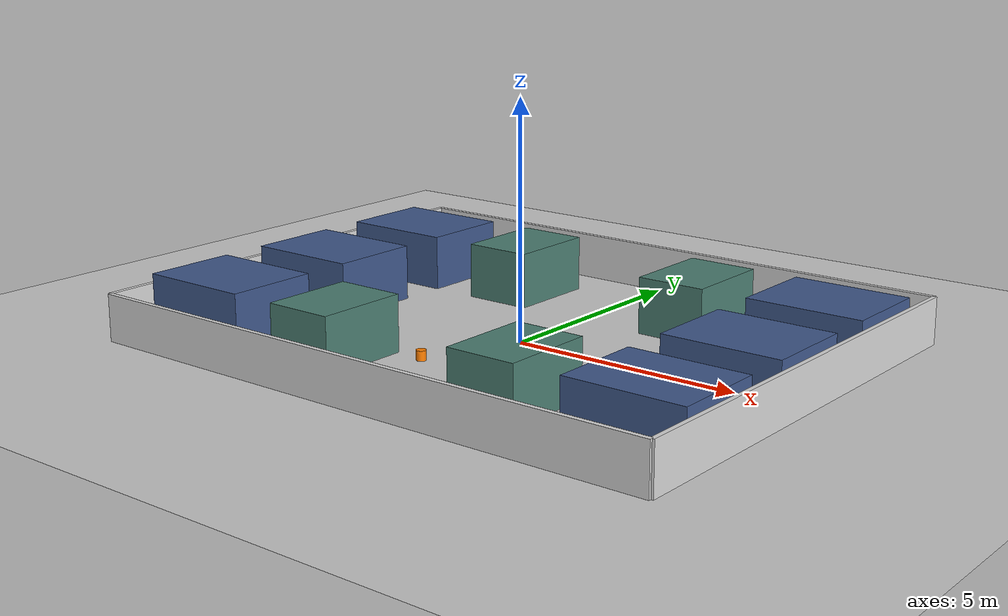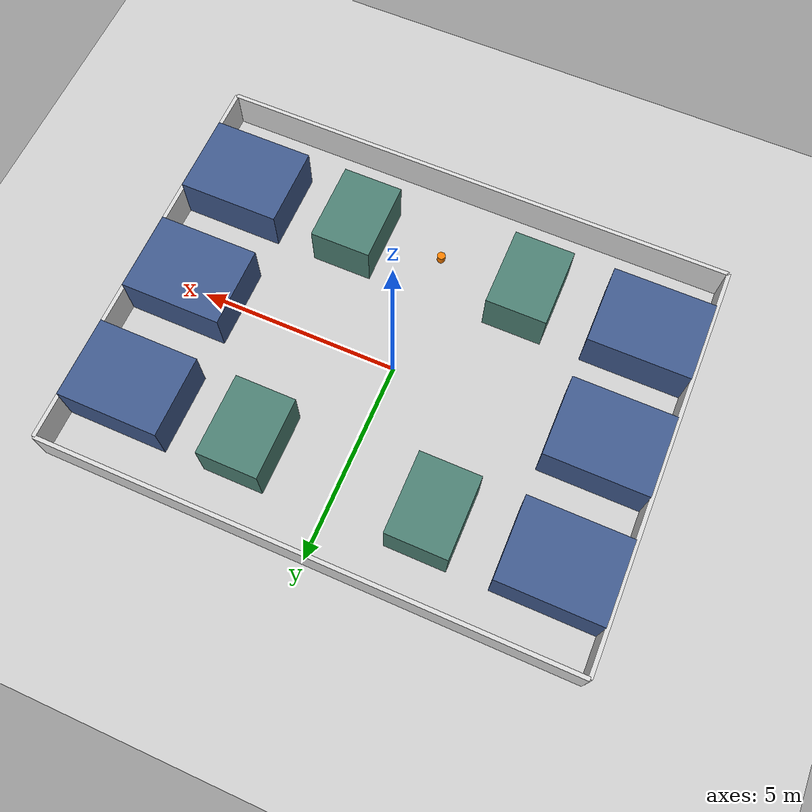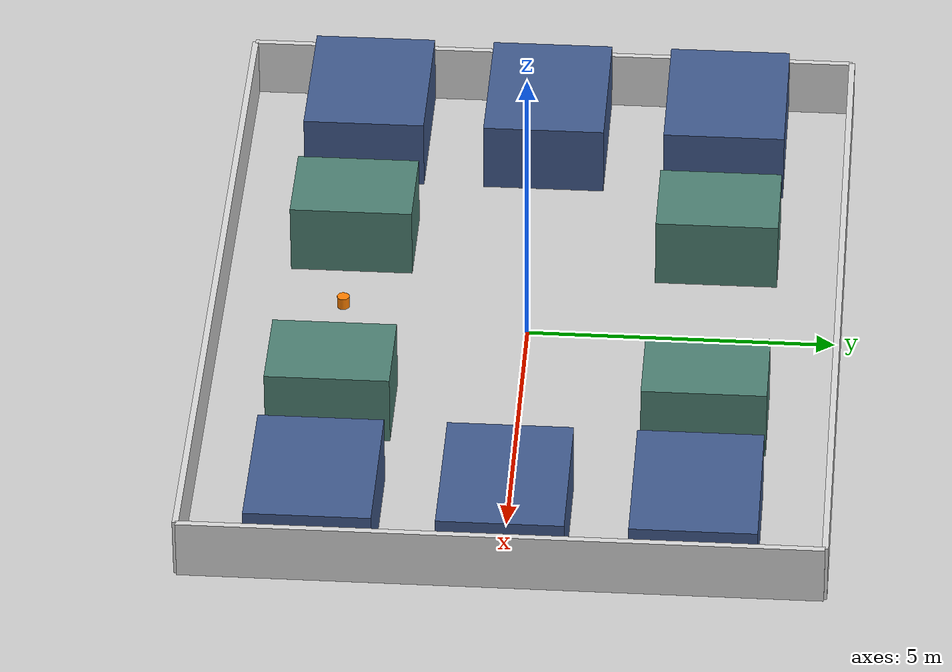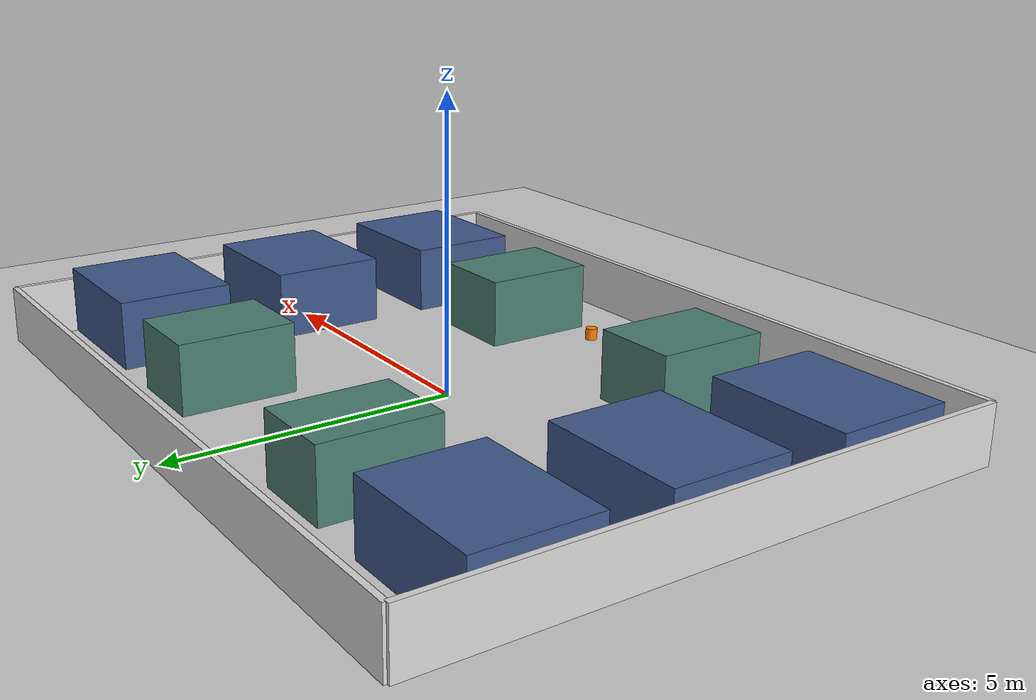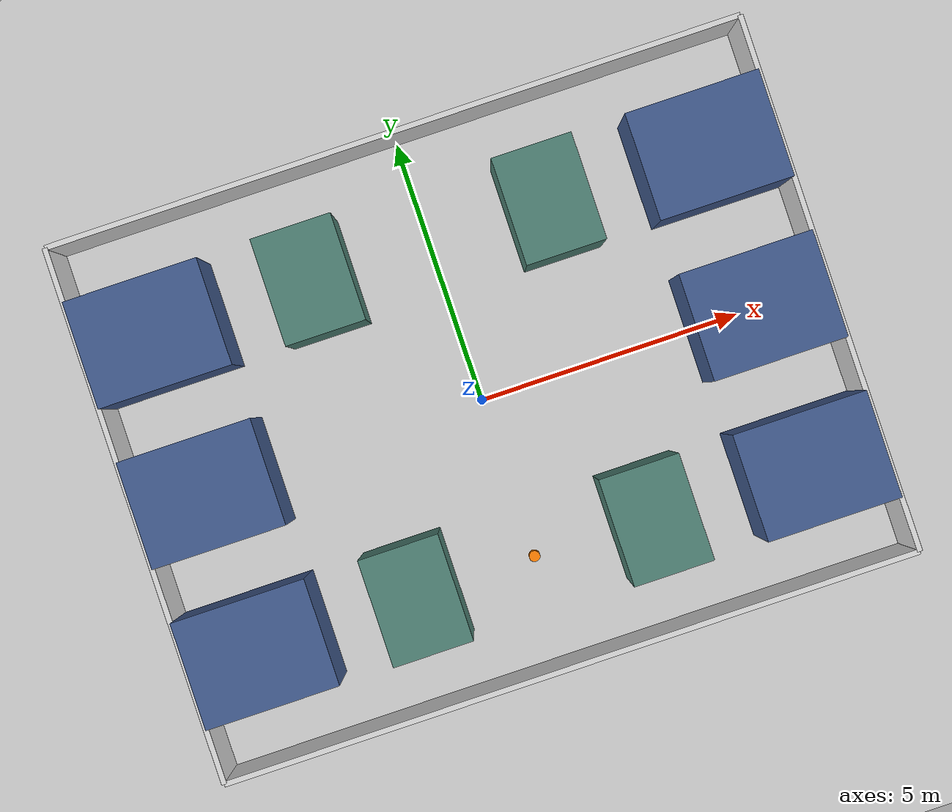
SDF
<?xml version="1.0"?>
<sdf version="1.6">
  <world name="cleanroom">
    <physics type="ode">
      <max_step_size>0.001</max_step_size>
      <real_time_factor>5</real_time_factor>
      <real_time_update_rate>1000</real_time_update_rate>
    </physics>

    <include>
      <uri>model://sun</uri>
    </include>

    <include>
      <uri>model://ground_plane</uri>
    </include>

    <plugin name="gas_world_plugin" filename="libgazebo_ros_state.so">
      <ros>
        <namespace>/gazebo</namespace>
      </ros>
      <update_rate>1.0</update_rate>
    </plugin>

    <!-- ===== 외벽 ===== -->
    <model name="cleanroom_wall_left">
      <static>true</static>
      <pose>-6.55 0 0.5 0 0 0</pose>
      <link name="link">
        <collision name="collision"><geometry><box><size>0.1 10.1 1</size></box></geometry></collision>
        <visual name="visual">
          <geometry><box><size>0.1 10.1 1</size></box></geometry>
          <material><ambient>0.85 0.85 0.85 1</ambient><diffuse>0.85 0.85 0.85 1</diffuse></material>
        </visual>
      </link>
    </model>

    <model name="cleanroom_wall_right">
      <static>true</static>
      <pose>6.55 0 0.5 0 0 0</pose>
      <link name="link">
        <collision name="collision"><geometry><box><size>0.1 10.1 1</size></box></geometry></collision>
        <visual name="visual">
          <geometry><box><size>0.1 10.1 1</size></box></geometry>
          <material><ambient>0.85 0.85 0.85 1</ambient><diffuse>0.85 0.85 0.85 1</diffuse></material>
        </visual>
      </link>
    </model>

    <model name="cleanroom_wall_top">
      <static>true</static>
      <pose>0 5.05 0.5 0 0 0</pose>
      <link name="link">
        <collision name="collision"><geometry><box><size>13.1 0.1 1</size></box></geometry></collision>
        <visual name="visual">
          <geometry><box><size>13.1 0.1 1</size></box></geometry>
          <material><ambient>0.85 0.85 0.85 1</ambient><diffuse>0.85 0.85 0.85 1</diffuse></material>
        </visual>
      </link>
    </model>

    <model name="cleanroom_wall_bottom">
      <static>true</static>
      <pose>0 -5.05 0.5 0 0 0</pose>
      <link name="link">
        <collision name="collision"><geometry><box><size>13.1 0.1 1</size></box></geometry></collision>
        <visual name="visual">
          <geometry><box><size>13.1 0.1 1</size></box></geometry>
          <material><ambient>0.85 0.85 0.85 1</ambient><diffuse>0.85 0.85 0.85 1</diffuse></material>
        </visual>
      </link>
    </model>

    <!-- ===== 좌측 외벽 장비 (3대) ===== -->
    <model name="equip_left_outer_1">
      <static>true</static>
      <pose>-5.25 -3.0 0.6 0 0 0</pose>
      <link name="link">
        <collision name="collision"><geometry><box><size>2.5 2.0 1.2</size></box></geometry></collision>
        <visual name="visual">
          <geometry><box><size>2.5 2.0 1.2</size></box></geometry>
          <material><ambient>0.25 0.35 0.55 1</ambient><diffuse>0.25 0.35 0.55 1</diffuse></material>
        </visual>
      </link>
    </model>

    <model name="equip_left_outer_2">
      <static>true</static>
      <pose>-5.25 0.0 0.6 0 0 0</pose>
      <link name="link">
        <collision name="collision"><geometry><box><size>2.5 2.0 1.2</size></box></geometry></collision>
        <visual name="visual">
          <geometry><box><size>2.5 2.0 1.2</size></box></geometry>
          <material><ambient>0.25 0.35 0.55 1</ambient><diffuse>0.25 0.35 0.55 1</diffuse></material>
        </visual>
      </link>
    </model>

    <model name="equip_left_outer_3">
      <static>true</static>
      <pose>-5.25 3.0 0.6 0 0 0</pose>
      <link name="link">
        <collision name="collision"><geometry><box><size>2.5 2.0 1.2</size></box></geometry></collision>
        <visual name="visual">
          <geometry><box><size>2.5 2.0 1.2</size></box></geometry>
          <material><ambient>0.25 0.35 0.55 1</ambient><diffuse>0.25 0.35 0.55 1</diffuse></material>
        </visual>
      </link>
    </model>

    <!-- ===== 좌측 내벽 장비 (2대, y=0 비워서 십자 통로 확보) ===== -->
    <model name="equip_left_inner_1">
      <static>true</static>
      <pose>-2.25 -3.0 0.6 0 0 0</pose>
      <link name="link">
        <collision name="collision"><geometry><box><size>1.5 2.0 1.2</size></box></geometry></collision>
        <visual name="visual">
          <geometry><box><size>1.5 2.0 1.2</size></box></geometry>
          <material><ambient>0.3 0.5 0.45 1</ambient><diffuse>0.3 0.5 0.45 1</diffuse></material>
        </visual>
      </link>
    </model>

    <model name="equip_left_inner_2">
      <static>true</static>
      <pose>-2.25 3.0 0.6 0 0 0</pose>
      <link name="link">
        <collision name="collision"><geometry><box><size>1.5 2.0 1.2</size></box></geometry></collision>
        <visual name="visual">
          <geometry><box><size>1.5 2.0 1.2</size></box></geometry>
          <material><ambient>0.3 0.5 0.45 1</ambient><diffuse>0.3 0.5 0.45 1</diffuse></material>
        </visual>
      </link>
    </model>

    <!-- ===== 우측 외벽 장비 (3대, 좌측 대칭) ===== -->
    <model name="equip_right_outer_1">
      <static>true</static>
      <pose>5.25 -3.0 0.6 0 0 0</pose>
      <link name="link">
        <collision name="collision"><geometry><box><size>2.5 2.0 1.2</size></box></geometry></collision>
        <visual name="visual">
          <geometry><box><size>2.5 2.0 1.2</size></box></geometry>
          <material><ambient>0.25 0.35 0.55 1</ambient><diffuse>0.25 0.35 0.55 1</diffuse></material>
        </visual>
      </link>
    </model>

    <model name="equip_right_outer_2">
      <static>true</static>
      <pose>5.25 0.0 0.6 0 0 0</pose>
      <link name="link">
        <collision name="collision"><geometry><box><size>2.5 2.0 1.2</size></box></geometry></collision>
        <visual name="visual">
          <geometry><box><size>2.5 2.0 1.2</size></box></geometry>
          <material><ambient>0.25 0.35 0.55 1</ambient><diffuse>0.25 0.35 0.55 1</diffuse></material>
        </visual>
      </link>
    </model>

    <model name="equip_right_outer_3">
      <static>true</static>
      <pose>5.25 3.0 0.6 0 0 0</pose>
      <link name="link">
        <collision name="collision"><geometry><box><size>2.5 2.0 1.2</size></box></geometry></collision>
        <visual name="visual">
          <geometry><box><size>2.5 2.0 1.2</size></box></geometry>
          <material><ambient>0.25 0.35 0.55 1</ambient><diffuse>0.25 0.35 0.55 1</diffuse></material>
        </visual>
      </link>
    </model>

    <!-- ===== 우측 내벽 장비 (2대, 좌측 대칭) ===== -->
    <model name="equip_right_inner_1">
      <static>true</static>
      <pose>2.25 -3.0 0.6 0 0 0</pose>
      <link name="link">
        <collision name="collision"><geometry><box><size>1.5 2.0 1.2</size></box></geometry></collision>
        <visual name="visual">
          <geometry><box><size>1.5 2.0 1.2</size></box></geometry>
          <material><ambient>0.3 0.5 0.45 1</ambient><diffuse>0.3 0.5 0.45 1</diffuse></material>
        </visual>
      </link>
    </model>

    <model name="equip_right_inner_2">
      <static>true</static>
      <pose>2.25 3.0 0.6 0 0 0</pose>
      <link name="link">
        <collision name="collision"><geometry><box><size>1.5 2.0 1.2</size></box></geometry></collision>
        <visual name="visual">
          <geometry><box><size>1.5 2.0 1.2</size></box></geometry>
          <material><ambient>0.3 0.5 0.45 1</ambient><diffuse>0.3 0.5 0.45 1</diffuse></material>
        </visual>
      </link>
    </model>

    <!-- ===== 가스 소스 ===== -->
    <model name="gas_source">
      <static>true</static>
      <pose>0.0 -3.0 0.5 0 0 0</pose>
      <link name="link">
        <collision name="collision">
          <geometry><cylinder><radius>0.1</radius><length>0.2</length></cylinder></geometry>
        </collision>
        <visual name="visual">
          <geometry><cylinder><radius>0.1</radius><length>0.2</length></cylinder></geometry>
          <material>
            <ambient>1 0.5 0 1</ambient>
            <diffuse>1 0.5 0 1</diffuse>
            <emissive>1 0.5 0 1</emissive>
          </material>
        </visual>
      </link>
      <plugin name="gas_source_plugin" filename="libgas_source_plugin.so">
        <!-- 시작 시 0. 로봇 스폰 위치와 가까워 허위 감지되는 것을 막고,
             패트롤 시작 1초 뒤 respawn_gas_source가 랜덤 위치+농도500으로 설정 -->
        <initial_concentration>0.0</initial_concentration>
        <radius>0.1</radius>
      </plugin>
    </model>

  </world>
</sdf>
